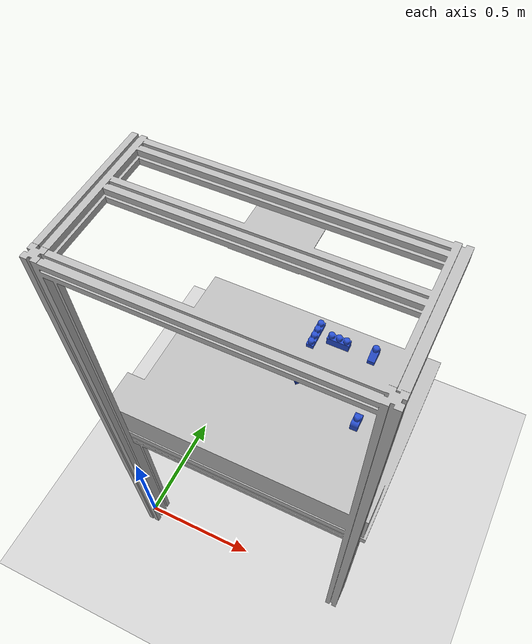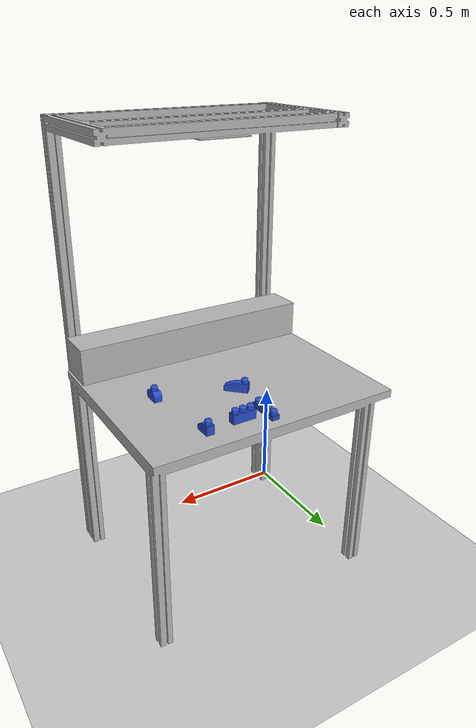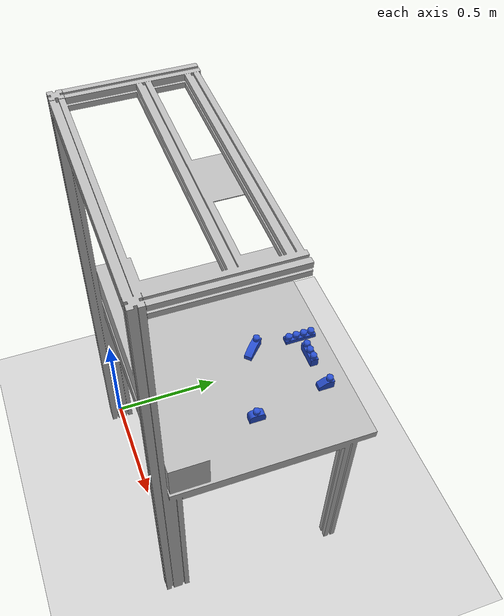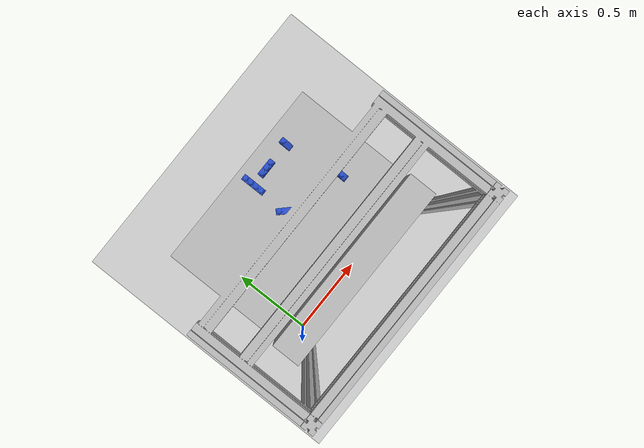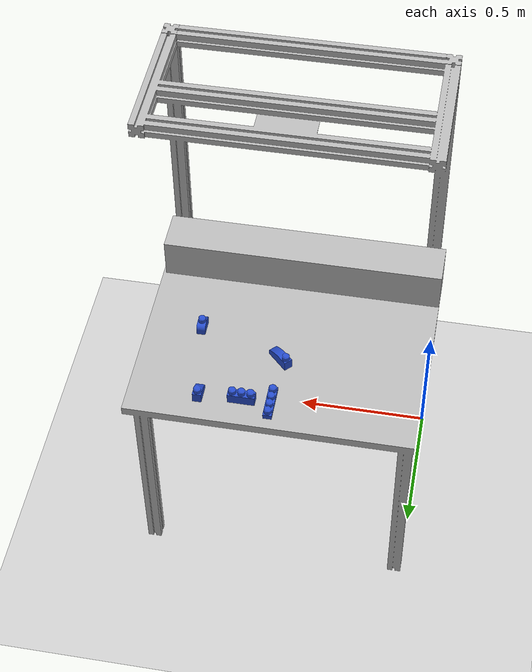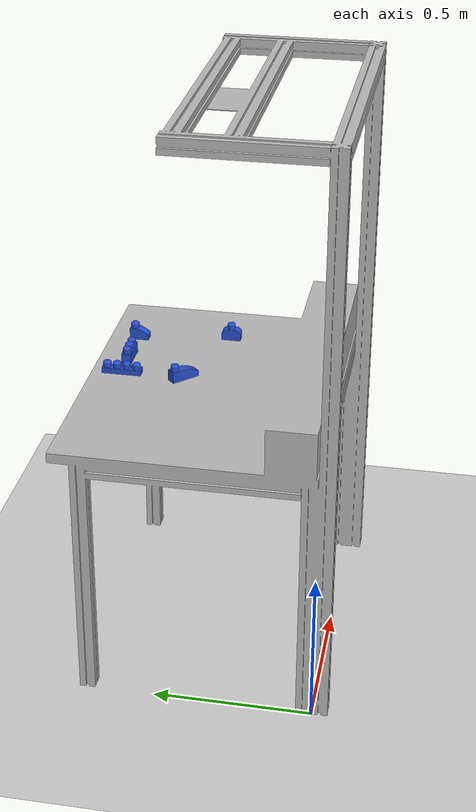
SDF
<?xml version="1.0" ?>
<sdf version="1.4">
  <world name="default">
    <physics type='ode'>
      <gravity>0 0 -9.81</gravity>
      <max_step_size>0.001</max_step_size>
      <real_time_factor>1</real_time_factor>
      <real_time_update_rate>1000</real_time_update_rate>
    </physics>

    <include>
      <uri>model://sun</uri>
    </include>

    <include>
      <uri>model://ground_plane</uri>
    </include>

    <include>
      <name>tavolo</name>
      <uri>model://tavolo</uri>
      <pose>0.0 0.0 0.0 0 0 0</pose>
    </include>

    <include>
      <name>my_brick_ob1</name>
      <uri>model://X1-Y2-Z2-CHAMFER</uri>
      <pose> 0.75 0.7 0.87  0. 0. 0.</pose>
    </include>

   <include>
      <name>my_brick_ob2</name>
      <uri>model://X1-Y2-Z2-TWINFILLET</uri>
      <pose> 0.8 .4 0.87  0. 0. 0.</pose>
    </include>

    <include>
      <name>my_brick_ob3</name>
      <uri>model://X1-Y3-Z2</uri>
      <pose> 0.6 0.7 0.87  0. 0. 1.57</pose>
    </include>

    <include>
      <name>my_brick_ob4</name>
      <uri>model://X1-Y3-Z2-FILLET</uri>
      <pose> 0.5 0.5 0.87  0. 0. 0.785398</pose>
    </include>

    <include>
      <name>my_brick_ob5</name>
      <uri>model://X1-Y4-Z1</uri>
      <pose> 0.5 0.7 0.87 0. 0. 0.</pose>
    </include>

    <gui>
    <camera name="gzclient_camera">
      <pose>1. 3.2 2.2 0. 0.4 -1.75</pose>
    </camera>
    </gui>

  </world>
</sdf>

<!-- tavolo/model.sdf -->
<sdf version="1.4">

<physics type="ode">

      <ode>

        <constraints>
          <contact_max_correcting_vel>0.1</contact_max_correcting_vel>
          <contact_surface_layer>0.0001</contact_surface_layer>
        </constraints>
      </ode>
	<max_contacts>10</max_contacts>
	</physics>

	<model name="tavolo">
	    <static>true</static>
		<link name="link">

		     <collision name="base">
			<pose>0.5 0.4 0.85 0 0 0</pose>
			<geometry>
			  <box>
			    <size>1 0.8 0.04</size>
			  </box>
			</geometry>

				<!-- see https://gazebosim.org/tutorials?tut=physics_params&cat=physics-->
				 <surface>
				  <bounce>
				    <restitution_coefficient>0.01</restitution_coefficient>
				    <threshold>5.0</threshold>
				  </bounce>
				  <friction>
				    <ode>
				      <mu>10</mu>
				      <mu2>10</mu2>
				    </ode>
				  </friction>
				  <contact>
				     <ode>
					<max_vel>0.1</max_vel>
					<min_depth>0.001</min_depth>
				        <kp>1000000.0</kp>
					<kd>1000.0</kd>
				      </ode>
			            </contact>
				</surface>

		     	</collision>

	     			<collision name="box">
				<pose>0.5 0.08 0.95 0 0 0</pose>
				<geometry>
				  <box>
				    <size>1 0.15 0.15</size>
				  </box>
				</geometry>

				 <surface>
				  <bounce>
				    <restitution_coefficient>0.01</restitution_coefficient>
				    <threshold>5.0</threshold>
				  </bounce>
				  <friction>
				    <ode>
				      <mu>10</mu>
				      <mu2>10</mu2>
				    </ode>
				  </friction>
				  <contact>
				     <ode>
					<max_vel>0.1</max_vel>
					<min_depth>0.001</min_depth>
				        <kp>1000000.0</kp>
					<kd>1000.0</kd>
				      </ode>
			            </contact>
				</surface>

			      </collision>

			   <collision name="back">
				<pose>0.5 -0.02 1.35 1.57 0 0</pose>
				<geometry>
				  <box>
				    <size>1 1.0 0.04</size>
				  </box>
				</geometry>

				 <surface>
				  <bounce>
				    <restitution_coefficient>0.01</restitution_coefficient>
				    <threshold>5.0</threshold>
				  </bounce>
				  <friction>
				    <ode>
				      <mu>10</mu>
				      <mu2>10</mu2>
				    </ode>
				  </friction>
				  <contact>
				     <ode>
					<max_vel>0.1</max_vel>
					<min_depth>0.001</min_depth>
				        <kp>1000000.0</kp>
					<kd>1000.0</kd>
				      </ode>
			            </contact>
				</surface>

			      </collision>

			<visual name="visual">
				<geometry>
					<mesh>
						<uri>model://tavolo/mesh/tavolo.stl</uri>
                                                <scale>0.001 0.001 0.001</scale>
					</mesh>
				</geometry>
			</visual>
		</link>
	</model>
</sdf>

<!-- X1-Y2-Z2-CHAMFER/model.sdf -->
<sdf version='1.7'>
  <model name='X1-Y2-Z2-CHAMFER'>
    <link name='link'>
      <inertial>
        <mass>1</mass>
        <inertia>
          <ixx>0.166667</ixx>
          <ixy>0</ixy>
          <ixz>0</ixz>
          <iyy>0.166667</iyy>
          <iyz>0</iyz>
          <izz>0.166667</izz>
        </inertia>
      </inertial>
      <pose>0 -0 0 0 -0 0</pose>
      <visual name='visual'>
        <pose>0 0 0 0 -0 0</pose>
        <geometry>
          <mesh>
            <uri>model://X1-Y2-Z2-CHAMFER/mesh/X1-Y2-Z2-CHAMFER.stl</uri>
            <scale>1 1 1</scale>
          </mesh>
        </geometry>
        <material>
          <lighting>1</lighting>
          <script>
            <uri>file://media/materials/scripts/gazebo.material</uri>
            <name>Gazebo/Blue</name>
          </script>
          <shader type='pixel'/>
        </material>
        <transparency>0</transparency>
        <cast_shadows>1</cast_shadows>
      </visual>
      <collision name='collision'>
        <laser_retro>0</laser_retro>
        <max_contacts>10</max_contacts>
        <pose>0 0 0 0 -0 0</pose>
        <geometry>
          <mesh>
            <uri>model://X1-Y2-Z2-CHAMFER/mesh/X1-Y2-Z2-CHAMFER.stl</uri>
            <scale>1 1 1</scale>
          </mesh>
        </geometry>
        <surface>
          <friction>
            <ode>
              <mu>1</mu>
              <mu2>1</mu2>
              <fdir1>0 0 0</fdir1>
              <slip1>0</slip1>
              <slip2>0</slip2>
            </ode>
            <torsional>
              <coefficient>1</coefficient>
              <patch_radius>0</patch_radius>
              <surface_radius>0</surface_radius>
              <use_patch_radius>1</use_patch_radius>
              <ode>
                <slip>0</slip>
              </ode>
            </torsional>
          </friction>
          <bounce>
            <restitution_coefficient>0</restitution_coefficient>
            <threshold>1e+06</threshold>
          </bounce>
          <contact>
            <collide_without_contact>0</collide_without_contact>
            <collide_without_contact_bitmask>1</collide_without_contact_bitmask>
            <collide_bitmask>1</collide_bitmask>
            <ode>
              <soft_cfm>0</soft_cfm>
              <soft_erp>0.2</soft_erp>
              <kp>1e+13</kp>
              <kd>1</kd>
              <max_vel>0.01</max_vel>
              <min_depth>0</min_depth>
            </ode>
            <bullet>
              <split_impulse>1</split_impulse>
              <split_impulse_penetration_threshold>-0.01</split_impulse_penetration_threshold>
              <soft_cfm>0</soft_cfm>
              <soft_erp>0.2</soft_erp>
              <kp>1e+13</kp>
              <kd>1</kd>
            </bullet>
          </contact>
        </surface>
      </collision>
    </link>
    <static>0</static>
    <allow_auto_disable>1</allow_auto_disable>
  </model>
</sdf>

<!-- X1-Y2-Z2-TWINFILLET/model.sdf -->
<sdf version='1.7'>
  <model name='X1-Y2-Z2-TWINFILLET'>
    <link name='link'>
      <inertial>
        <mass>1</mass>
        <inertia>
          <ixx>0.166667</ixx>
          <ixy>0</ixy>
          <ixz>0</ixz>
          <iyy>0.166667</iyy>
          <iyz>0</iyz>
          <izz>0.166667</izz>
        </inertia>
      </inertial>
      <pose>-0 -0 0 0 -0 0</pose>
      <visual name='visual'>
        <pose>0 0 0 0 -0 0</pose>
        <geometry>
          <mesh>
            <uri>model://X1-Y2-Z2-TWINFILLET/mesh/X1-Y2-Z2-TWINFILLET.stl</uri>
            <scale>1 1 1</scale>
          </mesh>
        </geometry>
        <material>
          <lighting>1</lighting>
          <script>
            <uri>file://media/materials/scripts/gazebo.material</uri>
            <name>Gazebo/Blue</name>
          </script>
          <shader type='pixel'/>
        </material>
        <transparency>0</transparency>
        <cast_shadows>1</cast_shadows>
      </visual>
      <collision name='collision'>
        <laser_retro>0</laser_retro>
        <max_contacts>10</max_contacts>
        <pose>0 0 0 0 -0 0</pose>
        <geometry>
          <mesh>
            <uri>model://X1-Y2-Z2-TWINFILLET/mesh/X1-Y2-Z2-TWINFILLET.stl</uri>
            <scale>1 1 1</scale>
          </mesh>
        </geometry>
        <surface>
          <friction>
            <ode>
              <mu>1</mu>
              <mu2>1</mu2>
              <fdir1>0 0 0</fdir1>
              <slip1>0</slip1>
              <slip2>0</slip2>
            </ode>
            <torsional>
              <coefficient>1</coefficient>
              <patch_radius>0</patch_radius>
              <surface_radius>0</surface_radius>
              <use_patch_radius>1</use_patch_radius>
              <ode>
                <slip>0</slip>
              </ode>
            </torsional>
          </friction>
          <bounce>
            <restitution_coefficient>0</restitution_coefficient>
            <threshold>1e+06</threshold>
          </bounce>
          <contact>
            <collide_without_contact>0</collide_without_contact>
            <collide_without_contact_bitmask>1</collide_without_contact_bitmask>
            <collide_bitmask>1</collide_bitmask>
            <ode>
              <soft_cfm>0</soft_cfm>
              <soft_erp>0.2</soft_erp>
              <kp>1e+13</kp>
              <kd>1</kd>
              <max_vel>0.01</max_vel>
              <min_depth>0</min_depth>
            </ode>
            <bullet>
              <split_impulse>1</split_impulse>
              <split_impulse_penetration_threshold>-0.01</split_impulse_penetration_threshold>
              <soft_cfm>0</soft_cfm>
              <soft_erp>0.2</soft_erp>
              <kp>1e+13</kp>
              <kd>1</kd>
            </bullet>
          </contact>
        </surface>
      </collision>
    </link>
    <static>0</static>
    <allow_auto_disable>1</allow_auto_disable>
  </model>
</sdf>

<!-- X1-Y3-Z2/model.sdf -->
<sdf version='1.7'>
  <model name='X1-Y3-Z2'>
    <link name='link'>
      <inertial>
        <mass>1</mass>
        <inertia>
          <ixx>0.166667</ixx>
          <ixy>0</ixy>
          <ixz>0</ixz>
          <iyy>0.166667</iyy>
          <iyz>0</iyz>
          <izz>0.166667</izz>
        </inertia>
      </inertial>
      <pose>-0 0 0 0 -0 0</pose>
      <visual name='visual'>
        <pose>0 0 0 0 -0 0</pose>
        <geometry>
          <mesh>
            <uri>model://X1-Y3-Z2/mesh/X1-Y3-Z2.stl</uri>
            <scale>1 1 1</scale>
          </mesh>
        </geometry>
        <material>
          <lighting>1</lighting>
          <script>
            <uri>file://media/materials/scripts/gazebo.material</uri>
            <name>Gazebo/Blue</name>
          </script>
          <shader type='pixel'/>
        </material>
        <transparency>0</transparency>
        <cast_shadows>1</cast_shadows>
      </visual>
      <collision name='collision'>
        <laser_retro>0</laser_retro>
        <max_contacts>10</max_contacts>
        <pose>0 0 0 0 -0 0</pose>
        <geometry>
          <mesh>
            <uri>model://X1-Y3-Z2/mesh/X1-Y3-Z2.stl</uri>
            <scale>1 1 1</scale>
          </mesh>
        </geometry>
        <surface>
          <friction>
            <ode>
              <mu>1</mu>
              <mu2>1</mu2>
              <fdir1>0 0 0</fdir1>
              <slip1>0</slip1>
              <slip2>0</slip2>
            </ode>
            <torsional>
              <coefficient>1</coefficient>
              <patch_radius>0</patch_radius>
              <surface_radius>0</surface_radius>
              <use_patch_radius>1</use_patch_radius>
              <ode>
                <slip>0</slip>
              </ode>
            </torsional>
          </friction>
          <bounce>
            <restitution_coefficient>0</restitution_coefficient>
            <threshold>1e+06</threshold>
          </bounce>
          <contact>
            <collide_without_contact>0</collide_without_contact>
            <collide_without_contact_bitmask>1</collide_without_contact_bitmask>
            <collide_bitmask>1</collide_bitmask>
            <ode>
              <soft_cfm>0</soft_cfm>
              <soft_erp>0.2</soft_erp>
              <kp>1e+13</kp>
              <kd>1</kd>
              <max_vel>0.01</max_vel>
              <min_depth>0</min_depth>
            </ode>
            <bullet>
              <split_impulse>1</split_impulse>
              <split_impulse_penetration_threshold>-0.01</split_impulse_penetration_threshold>
              <soft_cfm>0</soft_cfm>
              <soft_erp>0.2</soft_erp>
              <kp>1e+13</kp>
              <kd>1</kd>
            </bullet>
          </contact>
        </surface>
      </collision>
    </link>
    <static>0</static>
    <allow_auto_disable>1</allow_auto_disable>
  </model>
</sdf>

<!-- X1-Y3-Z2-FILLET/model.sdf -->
<sdf version='1.7'>
  <model name='X1-Y3-Z2-FILLET'>
    <link name='link'>
      <inertial>
        <mass>1</mass>
        <inertia>
          <ixx>0.166667</ixx>
          <ixy>0</ixy>
          <ixz>0</ixz>
          <iyy>0.166667</iyy>
          <iyz>0</iyz>
          <izz>0.166667</izz>
        </inertia>
      </inertial>
      <pose>-0 0 0 0 -0 0</pose>
      <visual name='visual'>
        <pose>0 0 0 0 -0 0</pose>
        <geometry>
          <mesh>
            <uri>model://X1-Y3-Z2-FILLET/mesh/X1-Y3-Z2-FILLET.stl</uri>
            <scale>1 1 1</scale>
          </mesh>
        </geometry>
        <material>
          <lighting>1</lighting>
          <script>
            <uri>file://media/materials/scripts/gazebo.material</uri>
            <name>Gazebo/Blue</name>
          </script>
          <shader type='pixel'/>
        </material>
        <transparency>0</transparency>
        <cast_shadows>1</cast_shadows>
      </visual>
      <collision name='collision'>
        <laser_retro>0</laser_retro>
        <max_contacts>10</max_contacts>
        <pose>0 0 0 0 -0 0</pose>
        <geometry>
          <mesh>
            <uri>model://X1-Y3-Z2-FILLET/mesh/X1-Y3-Z2-FILLET.stl</uri>
            <scale>1 1 1</scale>
          </mesh>
        </geometry>
        <surface>
          <friction>
            <ode>
              <mu>1</mu>
              <mu2>1</mu2>
              <fdir1>0 0 0</fdir1>
              <slip1>0</slip1>
              <slip2>0</slip2>
            </ode>
            <torsional>
              <coefficient>1</coefficient>
              <patch_radius>0</patch_radius>
              <surface_radius>0</surface_radius>
              <use_patch_radius>1</use_patch_radius>
              <ode>
                <slip>0</slip>
              </ode>
            </torsional>
          </friction>
          <bounce>
            <restitution_coefficient>0</restitution_coefficient>
            <threshold>1e+06</threshold>
          </bounce>
          <contact>
            <collide_without_contact>0</collide_without_contact>
            <collide_without_contact_bitmask>1</collide_without_contact_bitmask>
            <collide_bitmask>1</collide_bitmask>
            <ode>
              <soft_cfm>0</soft_cfm>
              <soft_erp>0.2</soft_erp>
              <kp>1e+13</kp>
              <kd>1</kd>
              <max_vel>0.01</max_vel>
              <min_depth>0</min_depth>
            </ode>
            <bullet>
              <split_impulse>1</split_impulse>
              <split_impulse_penetration_threshold>-0.01</split_impulse_penetration_threshold>
              <soft_cfm>0</soft_cfm>
              <soft_erp>0.2</soft_erp>
              <kp>1e+13</kp>
              <kd>1</kd>
            </bullet>
          </contact>
        </surface>
      </collision>
    </link>
    <static>0</static>
    <allow_auto_disable>1</allow_auto_disable>
  </model>
</sdf>

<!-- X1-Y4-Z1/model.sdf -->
<sdf version='1.7'>
  <model name='X1-Y4-Z1'>
    <link name='link'>
      <inertial>
        <mass>1</mass>
        <inertia>
          <ixx>0.166667</ixx>
          <ixy>0</ixy>
          <ixz>0</ixz>
          <iyy>0.166667</iyy>
          <iyz>0</iyz>
          <izz>0.166667</izz>
        </inertia>
      </inertial>
      <pose>-0 -0 0 0 -0 0</pose>
      <visual name='visual'>
        <pose>0 0 0 0 -0 0</pose>
        <geometry>
          <mesh>
            <uri>model://X1-Y4-Z1/mesh/X1-Y4-Z1.stl</uri>
            <scale>1 1 1</scale>
          </mesh>
        </geometry>
        <material>
          <lighting>1</lighting>
          <script>
            <uri>file://media/materials/scripts/gazebo.material</uri>
            <name>Gazebo/Blue</name>
          </script>
          <shader type='pixel'/>
        </material>
        <transparency>0</transparency>
        <cast_shadows>1</cast_shadows>
      </visual>
      <collision name='collision'>
        <laser_retro>0</laser_retro>
        <max_contacts>10</max_contacts>
        <pose>0 0 0 0 -0 0</pose>
        <geometry>
          <mesh>
            <uri>model://X1-Y4-Z1/mesh/X1-Y4-Z1.stl</uri>
            <scale>1 1 1</scale>
          </mesh>
        </geometry>
        <surface>
          <friction>
            <ode>
              <mu>1</mu>
              <mu2>1</mu2>
              <fdir1>0 0 0</fdir1>
              <slip1>0</slip1>
              <slip2>0</slip2>
            </ode>
            <torsional>
              <coefficient>1</coefficient>
              <patch_radius>0</patch_radius>
              <surface_radius>0</surface_radius>
              <use_patch_radius>1</use_patch_radius>
              <ode>
                <slip>0</slip>
              </ode>
            </torsional>
          </friction>
          <bounce>
            <restitution_coefficient>0</restitution_coefficient>
            <threshold>1e+06</threshold>
          </bounce>
          <contact>
            <collide_without_contact>0</collide_without_contact>
            <collide_without_contact_bitmask>1</collide_without_contact_bitmask>
            <collide_bitmask>1</collide_bitmask>
            <ode>
              <soft_cfm>0</soft_cfm>
              <soft_erp>0.2</soft_erp>
              <kp>1e+13</kp>
              <kd>1</kd>
              <max_vel>0.01</max_vel>
              <min_depth>0</min_depth>
            </ode>
            <bullet>
              <split_impulse>1</split_impulse>
              <split_impulse_penetration_threshold>-0.01</split_impulse_penetration_threshold>
              <soft_cfm>0</soft_cfm>
              <soft_erp>0.2</soft_erp>
              <kp>1e+13</kp>
              <kd>1</kd>
            </bullet>
          </contact>
        </surface>
      </collision>
    </link>
    <static>0</static>
    <allow_auto_disable>1</allow_auto_disable>
  </model>
</sdf>
